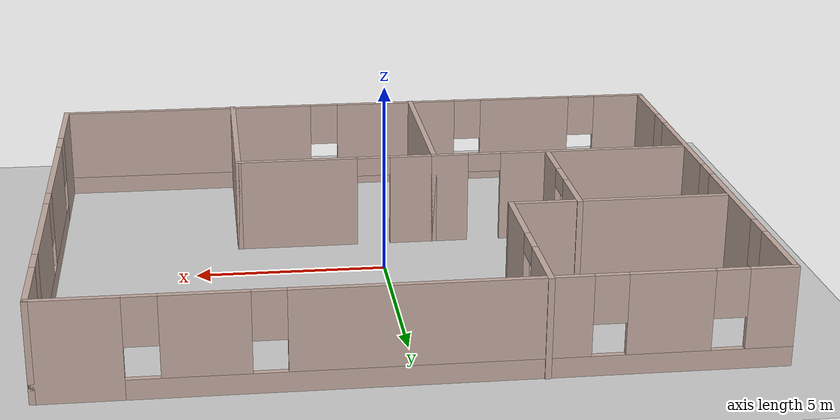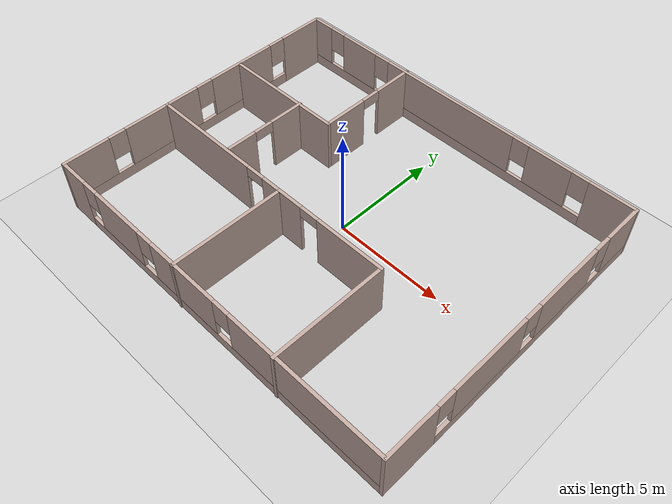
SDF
<?xml version="1.0" ?>
<sdf version="1.6">
  <world name="default">
    <include>
      <uri>model://sun</uri>
    </include>
    <include>
      <uri>model://ground_plane</uri>
    </include>

    <include>
        <uri>model://my_home_layout</uri>
        <pose>0 0 0 0 0 0</pose>
    </include>
  </world>
</sdf>

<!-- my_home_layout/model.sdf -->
<sdf version='1.7'>
  <model name='my_home_layout'>
    <pose>0.270044 -1.10157 0 0 -0 0</pose>
    <link name='Wall_10'>
      <pose>-0 -6.92353 0 0 -0 0</pose>
      <visual name='Wall_10_Visual_0'>
        <pose>-7.99396 0 1.25 0 -0 0</pose>
        <geometry>
          <box>
            <size>1.51208 0.15 2.5</size>
          </box>
        </geometry>
        <material>
          <script>
            <uri>file://media/materials/scripts/gazebo.material</uri>
            <name>Gazebo/Grey</name>
          </script>
          <ambient>0.760784 0.662745 0.627451 1</ambient>
        </material>
        <meta>
          <layer>0</layer>
        </meta>
      </visual>
      <collision name='Wall_10_Collision_0'>
        <geometry>
          <box>
            <size>1.51208 0.15 2.5</size>
          </box>
        </geometry>
        <pose>-7.99396 0 1.25 0 -0 0</pose>
      </collision>
      <visual name='Wall_10_Visual_1'>
        <pose>0.756038 0 0.25 0 -0 0</pose>
        <geometry>
          <box>
            <size>15.9879 0.15 0.5</size>
          </box>
        </geometry>
        <material>
          <script>
            <uri>file://media/materials/scripts/gazebo.material</uri>
            <name>Gazebo/Grey</name>
          </script>
          <ambient>0.760784 0.662745 0.627451 1</ambient>
        </material>
        <meta>
          <layer>0</layer>
        </meta>
      </visual>
      <collision name='Wall_10_Collision_1'>
        <geometry>
          <box>
            <size>15.9879 0.15 0.5</size>
          </box>
        </geometry>
        <pose>0.756038 0 0.25 0 -0 0</pose>
      </collision>
      <visual name='Wall_10_Visual_2'>
        <pose>-5.07899 0 1.5 0 -0 0</pose>
        <geometry>
          <box>
            <size>2.71788 0.15 2</size>
          </box>
        </geometry>
        <material>
          <script>
            <uri>file://media/materials/scripts/gazebo.material</uri>
            <name>Gazebo/Grey</name>
          </script>
          <ambient>0.760784 0.662745 0.627451 1</ambient>
        </material>
        <meta>
          <layer>0</layer>
        </meta>
      </visual>
      <collision name='Wall_10_Collision_2'>
        <geometry>
          <box>
            <size>2.71788 0.15 2</size>
          </box>
        </geometry>
        <pose>-5.07899 0 1.5 0 -0 0</pose>
      </collision>
      <visual name='Wall_10_Visual_3'>
        <pose>-1.13311 0 1.5 0 -0 0</pose>
        <geometry>
          <box>
            <size>3.57388 0.15 2</size>
          </box>
        </geometry>
        <material>
          <script>
            <uri>file://media/materials/scripts/gazebo.material</uri>
            <name>Gazebo/Grey</name>
          </script>
          <ambient>0.760784 0.662745 0.627451 1</ambient>
        </material>
        <meta>
          <layer>0</layer>
        </meta>
      </visual>
      <collision name='Wall_10_Collision_3'>
        <geometry>
          <box>
            <size>3.57388 0.15 2</size>
          </box>
        </geometry>
        <pose>-1.13311 0 1.5 0 -0 0</pose>
      </collision>
      <visual name='Wall_10_Visual_4'>
        <pose>5.10192 0 1.5 0 -0 0</pose>
        <geometry>
          <box>
            <size>7.29617 0.15 2</size>
          </box>
        </geometry>
        <material>
          <script>
            <uri>file://media/materials/scripts/gazebo.material</uri>
            <name>Gazebo/Grey</name>
          </script>
          <ambient>0.760784 0.662745 0.627451 1</ambient>
        </material>
        <meta>
          <layer>0</layer>
        </meta>
      </visual>
      <collision name='Wall_10_Collision_4'>
        <geometry>
          <box>
            <size>7.29617 0.15 2</size>
          </box>
        </geometry>
        <pose>5.10192 0 1.5 0 -0 0</pose>
      </collision>
      <visual name='Wall_10_Visual_5'>
        <pose>-6.83792 0 1.9 0 -0 0</pose>
        <geometry>
          <box>
            <size>0.8 0.15 1.2</size>
          </box>
        </geometry>
        <material>
          <script>
            <uri>file://media/materials/scripts/gazebo.material</uri>
            <name>Gazebo/Grey</name>
          </script>
          <ambient>0.760784 0.662745 0.627451 1</ambient>
        </material>
        <meta>
          <layer>0</layer>
        </meta>
      </visual>
      <collision name='Wall_10_Collision_5'>
        <geometry>
          <box>
            <size>0.8 0.15 1.2</size>
          </box>
        </geometry>
        <pose>-6.83792 0 1.9 0 -0 0</pose>
      </collision>
      <visual name='Wall_10_Visual_6'>
        <pose>-3.32005 0 1.9 0 -0 0</pose>
        <geometry>
          <box>
            <size>0.8 0.15 1.2</size>
          </box>
        </geometry>
        <material>
          <script>
            <uri>file://media/materials/scripts/gazebo.material</uri>
            <name>Gazebo/Grey</name>
          </script>
          <ambient>0.760784 0.662745 0.627451 1</ambient>
        </material>
        <meta>
          <layer>0</layer>
        </meta>
      </visual>
      <collision name='Wall_10_Collision_6'>
        <geometry>
          <box>
            <size>0.8 0.15 1.2</size>
          </box>
        </geometry>
        <pose>-3.32005 0 1.9 0 -0 0</pose>
      </collision>
      <visual name='Wall_10_Visual_7'>
        <pose>1.05383 0 1.9 0 -0 0</pose>
        <geometry>
          <box>
            <size>0.8 0.15 1.2</size>
          </box>
        </geometry>
        <material>
          <script>
            <uri>file://media/materials/scripts/gazebo.material</uri>
            <name>Gazebo/Grey</name>
          </script>
          <ambient>0.760784 0.662745 0.627451 1</ambient>
        </material>
        <meta>
          <layer>0</layer>
        </meta>
      </visual>
      <collision name='Wall_10_Collision_7'>
        <geometry>
          <box>
            <size>0.8 0.15 1.2</size>
          </box>
        </geometry>
        <pose>1.05383 0 1.9 0 -0 0</pose>
      </collision>
    </link>
    <link name='Wall_11'>
      <pose>8.675 0.001469 0 0 -0 1.5708</pose>
      <visual name='Wall_11_Visual_0'>
        <pose>-5.76322 0 1.25 0 -0 0</pose>
        <geometry>
          <box>
            <size>2.47357 0.15 2.5</size>
          </box>
        </geometry>
        <material>
          <script>
            <uri>file://media/materials/scripts/gazebo.material</uri>
            <name>Gazebo/Grey</name>
          </script>
          <ambient>0.760784 0.662745 0.627451 1</ambient>
        </material>
        <meta>
          <layer>0</layer>
        </meta>
      </visual>
      <collision name='Wall_11_Collision_0'>
        <geometry>
          <box>
            <size>2.47357 0.15 2.5</size>
          </box>
        </geometry>
        <pose>-5.76322 0 1.25 0 -0 0</pose>
      </collision>
      <visual name='Wall_11_Visual_1'>
        <pose>1.23678 0 0.25 0 -0 0</pose>
        <geometry>
          <box>
            <size>11.5264 0.15 0.5</size>
          </box>
        </geometry>
        <material>
          <script>
            <uri>file://media/materials/scripts/gazebo.material</uri>
            <name>Gazebo/Grey</name>
          </script>
          <ambient>0.760784 0.662745 0.627451 1</ambient>
        </material>
        <meta>
          <layer>0</layer>
        </meta>
      </visual>
      <collision name='Wall_11_Collision_1'>
        <geometry>
          <box>
            <size>11.5264 0.15 0.5</size>
          </box>
        </geometry>
        <pose>1.23678 0 0.25 0 -0 0</pose>
      </collision>
      <visual name='Wall_11_Visual_2'>
        <pose>-1.84746 0 1.5 0 -0 0</pose>
        <geometry>
          <box>
            <size>3.75794 0.15 2</size>
          </box>
        </geometry>
        <material>
          <script>
            <uri>file://media/materials/scripts/gazebo.material</uri>
            <name>Gazebo/Grey</name>
          </script>
          <ambient>0.760784 0.662745 0.627451 1</ambient>
        </material>
        <meta>
          <layer>0</layer>
        </meta>
      </visual>
      <collision name='Wall_11_Collision_2'>
        <geometry>
          <box>
            <size>3.75794 0.15 2</size>
          </box>
        </geometry>
        <pose>-1.84746 0 1.5 0 -0 0</pose>
      </collision>
      <visual name='Wall_11_Visual_3'>
        <pose>2.52694 0 1.5 0 -0 0</pose>
        <geometry>
          <box>
            <size>3.39086 0.15 2</size>
          </box>
        </geometry>
        <material>
          <script>
            <uri>file://media/materials/scripts/gazebo.material</uri>
            <name>Gazebo/Grey</name>
          </script>
          <ambient>0.760784 0.662745 0.627451 1</ambient>
        </material>
        <meta>
          <layer>0</layer>
        </meta>
      </visual>
      <collision name='Wall_11_Collision_3'>
        <geometry>
          <box>
            <size>3.39086 0.15 2</size>
          </box>
        </geometry>
        <pose>2.52694 0 1.5 0 -0 0</pose>
      </collision>
      <visual name='Wall_11_Visual_4'>
        <pose>6.01119 0 1.5 0 -0 0</pose>
        <geometry>
          <box>
            <size>1.97763 0.15 2</size>
          </box>
        </geometry>
        <material>
          <script>
            <uri>file://media/materials/scripts/gazebo.material</uri>
            <name>Gazebo/Grey</name>
          </script>
          <ambient>0.760784 0.662745 0.627451 1</ambient>
        </material>
        <meta>
          <layer>0</layer>
        </meta>
      </visual>
      <collision name='Wall_11_Collision_4'>
        <geometry>
          <box>
            <size>1.97763 0.15 2</size>
          </box>
        </geometry>
        <pose>6.01119 0 1.5 0 -0 0</pose>
      </collision>
      <visual name='Wall_11_Visual_5'>
        <pose>-4.12643 0 1.9 0 -0 0</pose>
        <geometry>
          <box>
            <size>0.8 0.15 1.2</size>
          </box>
        </geometry>
        <material>
          <script>
            <uri>file://media/materials/scripts/gazebo.material</uri>
            <name>Gazebo/Grey</name>
          </script>
          <ambient>0.760784 0.662745 0.627451 1</ambient>
        </material>
        <meta>
          <layer>0</layer>
        </meta>
      </visual>
      <collision name='Wall_11_Collision_5'>
        <geometry>
          <box>
            <size>0.8 0.15 1.2</size>
          </box>
        </geometry>
        <pose>-4.12643 0 1.9 0 -0 0</pose>
      </collision>
      <visual name='Wall_11_Visual_6'>
        <pose>0.43151 0 1.9 0 -0 0</pose>
        <geometry>
          <box>
            <size>0.8 0.15 1.2</size>
          </box>
        </geometry>
        <material>
          <script>
            <uri>file://media/materials/scripts/gazebo.material</uri>
            <name>Gazebo/Grey</name>
          </script>
          <ambient>0.760784 0.662745 0.627451 1</ambient>
        </material>
        <meta>
          <layer>0</layer>
        </meta>
      </visual>
      <collision name='Wall_11_Collision_6'>
        <geometry>
          <box>
            <size>0.8 0.15 1.2</size>
          </box>
        </geometry>
        <pose>0.43151 0 1.9 0 -0 0</pose>
      </collision>
      <visual name='Wall_11_Visual_7'>
        <pose>4.62237 0 1.9 0 -0 0</pose>
        <geometry>
          <box>
            <size>0.8 0.15 1.2</size>
          </box>
        </geometry>
        <material>
          <script>
            <uri>file://media/materials/scripts/gazebo.material</uri>
            <name>Gazebo/Grey</name>
          </script>
          <ambient>0.760784 0.662745 0.627451 1</ambient>
        </material>
        <meta>
          <layer>0</layer>
        </meta>
      </visual>
      <collision name='Wall_11_Collision_7'>
        <geometry>
          <box>
            <size>0.8 0.15 1.2</size>
          </box>
        </geometry>
        <pose>4.62237 0 1.9 0 -0 0</pose>
      </collision>
    </link>
    <link name='Wall_12'>
      <pose>-0 6.92647 0 0 -0 3.14159</pose>
      <visual name='Wall_12_Visual_0'>
        <pose>-7.6817 0 1.25 0 -0 0</pose>
        <geometry>
          <box>
            <size>2.1366 0.15 2.5</size>
          </box>
        </geometry>
        <material>
          <script>
            <uri>file://media/materials/scripts/gazebo.material</uri>
            <name>Gazebo/Grey</name>
          </script>
          <ambient>0.760784 0.662745 0.627451 1</ambient>
        </material>
        <meta>
          <layer>0</layer>
        </meta>
      </visual>
      <collision name='Wall_12_Collision_0'>
        <geometry>
          <box>
            <size>2.1366 0.15 2.5</size>
          </box>
        </geometry>
        <pose>-7.6817 0 1.25 0 -0 0</pose>
      </collision>
      <visual name='Wall_12_Visual_1'>
        <pose>1.0683 0 0.25 0 -0 0</pose>
        <geometry>
          <box>
            <size>15.3634 0.15 0.5</size>
          </box>
        </geometry>
        <material>
          <script>
            <uri>file://media/materials/scripts/gazebo.material</uri>
            <name>Gazebo/Grey</name>
          </script>
          <ambient>0.760784 0.662745 0.627451 1</ambient>
        </material>
        <meta>
          <layer>0</layer>
        </meta>
      </visual>
      <collision name='Wall_12_Collision_1'>
        <geometry>
          <box>
            <size>15.3634 0.15 0.5</size>
          </box>
        </geometry>
        <pose>1.0683 0 0.25 0 -0 0</pose>
      </collision>
      <visual name='Wall_12_Visual_2'>
        <pose>-4.78866 0 1.5 0 -0 0</pose>
        <geometry>
          <box>
            <size>2.04948 0.15 2</size>
          </box>
        </geometry>
        <material>
          <script>
            <uri>file://media/materials/scripts/gazebo.material</uri>
            <name>Gazebo/Grey</name>
          </script>
          <ambient>0.760784 0.662745 0.627451 1</ambient>
        </material>
        <meta>
          <layer>0</layer>
        </meta>
      </visual>
      <collision name='Wall_12_Collision_2'>
        <geometry>
          <box>
            <size>2.04948 0.15 2</size>
          </box>
        </geometry>
        <pose>-4.78866 0 1.5 0 -0 0</pose>
      </collision>
      <visual name='Wall_12_Visual_3'>
        <pose>0.505746 0 1.5 0 -0 0</pose>
        <geometry>
          <box>
            <size>6.93933 0.15 2</size>
          </box>
        </geometry>
        <material>
          <script>
            <uri>file://media/materials/scripts/gazebo.material</uri>
            <name>Gazebo/Grey</name>
          </script>
          <ambient>0.760784 0.662745 0.627451 1</ambient>
        </material>
        <meta>
          <layer>0</layer>
        </meta>
      </visual>
      <collision name='Wall_12_Collision_3'>
        <geometry>
          <box>
            <size>6.93933 0.15 2</size>
          </box>
        </geometry>
        <pose>0.505746 0 1.5 0 -0 0</pose>
      </collision>
      <visual name='Wall_12_Visual_4'>
        <pose>5.78256 0 1.5 0 -0 0</pose>
        <geometry>
          <box>
            <size>2.0143 0.15 2</size>
          </box>
        </geometry>
        <material>
          <script>
            <uri>file://media/materials/scripts/gazebo.material</uri>
            <name>Gazebo/Grey</name>
          </script>
          <ambient>0.760784 0.662745 0.627451 1</ambient>
        </material>
        <meta>
          <layer>0</layer>
        </meta>
      </visual>
      <collision name='Wall_12_Collision_4'>
        <geometry>
          <box>
            <size>2.0143 0.15 2</size>
          </box>
        </geometry>
        <pose>5.78256 0 1.5 0 -0 0</pose>
      </collision>
      <visual name='Wall_12_Visual_5'>
        <pose>8.16986 0 1.5 0 -0 0</pose>
        <geometry>
          <box>
            <size>1.16029 0.15 2</size>
          </box>
        </geometry>
        <material>
          <script>
            <uri>file://media/materials/scripts/gazebo.material</uri>
            <name>Gazebo/Grey</name>
          </script>
          <ambient>0.760784 0.662745 0.627451 1</ambient>
        </material>
        <meta>
          <layer>0</layer>
        </meta>
      </visual>
      <collision name='Wall_12_Collision_5'>
        <geometry>
          <box>
            <size>1.16029 0.15 2</size>
          </box>
        </geometry>
        <pose>8.16986 0 1.5 0 -0 0</pose>
      </collision>
      <visual name='Wall_12_Visual_6'>
        <pose>-6.2134 0 1.9 0 -0 0</pose>
        <geometry>
          <box>
            <size>0.8 0.15 1.2</size>
          </box>
        </geometry>
        <material>
          <script>
            <uri>file://media/materials/scripts/gazebo.material</uri>
            <name>Gazebo/Grey</name>
          </script>
          <ambient>0.760784 0.662745 0.627451 1</ambient>
        </material>
        <meta>
          <layer>0</layer>
        </meta>
      </visual>
      <collision name='Wall_12_Collision_6'>
        <geometry>
          <box>
            <size>0.8 0.15 1.2</size>
          </box>
        </geometry>
        <pose>-6.2134 0 1.9 0 -0 0</pose>
      </collision>
      <visual name='Wall_12_Visual_7'>
        <pose>-3.36392 0 1.9 0 -0 0</pose>
        <geometry>
          <box>
            <size>0.8 0.15 1.2</size>
          </box>
        </geometry>
        <material>
          <script>
            <uri>file://media/materials/scripts/gazebo.material</uri>
            <name>Gazebo/Grey</name>
          </script>
          <ambient>0.760784 0.662745 0.627451 1</ambient>
        </material>
        <meta>
          <layer>0</layer>
        </meta>
      </visual>
      <collision name='Wall_12_Collision_7'>
        <geometry>
          <box>
            <size>0.8 0.15 1.2</size>
          </box>
        </geometry>
        <pose>-3.36392 0 1.9 0 -0 0</pose>
      </collision>
      <visual name='Wall_12_Visual_8'>
        <pose>4.37541 0 1.9 0 -0 0</pose>
        <geometry>
          <box>
            <size>0.8 0.15 1.2</size>
          </box>
        </geometry>
        <material>
          <script>
            <uri>file://media/materials/scripts/gazebo.material</uri>
            <name>Gazebo/Grey</name>
          </script>
          <ambient>0.760784 0.662745 0.627451 1</ambient>
        </material>
        <meta>
          <layer>0</layer>
        </meta>
      </visual>
      <collision name='Wall_12_Collision_8'>
        <geometry>
          <box>
            <size>0.8 0.15 1.2</size>
          </box>
        </geometry>
        <pose>4.37541 0 1.9 0 -0 0</pose>
      </collision>
      <visual name='Wall_12_Visual_9'>
        <pose>7.18971 0 1.9 0 -0 0</pose>
        <geometry>
          <box>
            <size>0.8 0.15 1.2</size>
          </box>
        </geometry>
        <material>
          <script>
            <uri>file://media/materials/scripts/gazebo.material</uri>
            <name>Gazebo/Grey</name>
          </script>
          <ambient>0.760784 0.662745 0.627451 1</ambient>
        </material>
        <meta>
          <layer>0</layer>
        </meta>
      </visual>
      <collision name='Wall_12_Collision_9'>
        <geometry>
          <box>
            <size>0.8 0.15 1.2</size>
          </box>
        </geometry>
        <pose>7.18971 0 1.9 0 -0 0</pose>
      </collision>
    </link>
    <link name='Wall_14'>
      <pose>-8.675 0.001469 0 0 -0 -1.5708</pose>
      <visual name='Wall_14_Visual_0'>
        <pose>-5.86508 0 1.25 0 -0 0</pose>
        <geometry>
          <box>
            <size>2.26984 0.15 2.5</size>
          </box>
        </geometry>
        <material>
          <script>
            <uri>file://media/materials/scripts/gazebo.material</uri>
            <name>Gazebo/Grey</name>
          </script>
          <ambient>0.760784 0.662745 0.627451 1</ambient>
        </material>
        <meta>
          <layer>0</layer>
        </meta>
      </visual>
      <collision name='Wall_14_Collision_0'>
        <geometry>
          <box>
            <size>2.26984 0.15 2.5</size>
          </box>
        </geometry>
        <pose>-5.86508 0 1.25 0 -0 0</pose>
      </collision>
      <visual name='Wall_14_Visual_1'>
        <pose>1.13492 0 0.25 0 -0 0</pose>
        <geometry>
          <box>
            <size>11.7302 0.15 0.5</size>
          </box>
        </geometry>
        <material>
          <script>
            <uri>file://media/materials/scripts/gazebo.material</uri>
            <name>Gazebo/Grey</name>
          </script>
          <ambient>0.760784 0.662745 0.627451 1</ambient>
        </material>
        <meta>
          <layer>0</layer>
        </meta>
      </visual>
      <collision name='Wall_14_Collision_1'>
        <geometry>
          <box>
            <size>11.7302 0.15 0.5</size>
          </box>
        </geometry>
        <pose>1.13492 0 0.25 0 -0 0</pose>
      </collision>
      <visual name='Wall_14_Visual_2'>
        <pose>-2.21944 0 1.5 0 -0 0</pose>
        <geometry>
          <box>
            <size>3.42145 0.15 2</size>
          </box>
        </geometry>
        <material>
          <script>
            <uri>file://media/materials/scripts/gazebo.material</uri>
            <name>Gazebo/Grey</name>
          </script>
          <ambient>0.760784 0.662745 0.627451 1</ambient>
        </material>
        <meta>
          <layer>0</layer>
        </meta>
      </visual>
      <collision name='Wall_14_Collision_2'>
        <geometry>
          <box>
            <size>3.42145 0.15 2</size>
          </box>
        </geometry>
        <pose>-2.21944 0 1.5 0 -0 0</pose>
      </collision>
      <visual name='Wall_14_Visual_3'>
        <pose>2.16181 0 1.5 0 -0 0</pose>
        <geometry>
          <box>
            <size>3.74105 0.15 2</size>
          </box>
        </geometry>
        <material>
          <script>
            <uri>file://media/materials/scripts/gazebo.material</uri>
            <name>Gazebo/Grey</name>
          </script>
          <ambient>0.760784 0.662745 0.627451 1</ambient>
        </material>
        <meta>
          <layer>0</layer>
        </meta>
      </visual>
      <collision name='Wall_14_Collision_3'>
        <geometry>
          <box>
            <size>3.74105 0.15 2</size>
          </box>
        </geometry>
        <pose>2.16181 0 1.5 0 -0 0</pose>
      </collision>
      <visual name='Wall_14_Visual_4'>
        <pose>5.91617 0 1.5 0 -0 0</pose>
        <geometry>
          <box>
            <size>2.16766 0.15 2</size>
          </box>
        </geometry>
        <material>
          <script>
            <uri>file://media/materials/scripts/gazebo.material</uri>
            <name>Gazebo/Grey</name>
          </script>
          <ambient>0.760784 0.662745 0.627451 1</ambient>
        </material>
        <meta>
          <layer>0</layer>
        </meta>
      </visual>
      <collision name='Wall_14_Collision_4'>
        <geometry>
          <box>
            <size>2.16766 0.15 2</size>
          </box>
        </geometry>
        <pose>5.91617 0 1.5 0 -0 0</pose>
      </collision>
      <visual name='Wall_14_Visual_5'>
        <pose>-4.33016 0 1.9 0 -0 0</pose>
        <geometry>
          <box>
            <size>0.8 0.15 1.2</size>
          </box>
        </geometry>
        <material>
          <script>
            <uri>file://media/materials/scripts/gazebo.material</uri>
            <name>Gazebo/Grey</name>
          </script>
          <ambient>0.760784 0.662745 0.627451 1</ambient>
        </material>
        <meta>
          <layer>0</layer>
        </meta>
      </visual>
      <collision name='Wall_14_Collision_5'>
        <geometry>
          <box>
            <size>0.8 0.15 1.2</size>
          </box>
        </geometry>
        <pose>-4.33016 0 1.9 0 -0 0</pose>
      </collision>
      <visual name='Wall_14_Visual_6'>
        <pose>-0.108711 0 1.9 0 -0 0</pose>
        <geometry>
          <box>
            <size>0.8 0.15 1.2</size>
          </box>
        </geometry>
        <material>
          <script>
            <uri>file://media/materials/scripts/gazebo.material</uri>
            <name>Gazebo/Grey</name>
          </script>
          <ambient>0.760784 0.662745 0.627451 1</ambient>
        </material>
        <meta>
          <layer>0</layer>
        </meta>
      </visual>
      <collision name='Wall_14_Collision_6'>
        <geometry>
          <box>
            <size>0.8 0.15 1.2</size>
          </box>
        </geometry>
        <pose>-0.108711 0 1.9 0 -0 0</pose>
      </collision>
      <visual name='Wall_14_Visual_7'>
        <pose>4.43234 0 1.9 0 -0 0</pose>
        <geometry>
          <box>
            <size>0.8 0.15 1.2</size>
          </box>
        </geometry>
        <material>
          <script>
            <uri>file://media/materials/scripts/gazebo.material</uri>
            <name>Gazebo/Grey</name>
          </script>
          <ambient>0.760784 0.662745 0.627451 1</ambient>
        </material>
        <meta>
          <layer>0</layer>
        </meta>
      </visual>
      <collision name='Wall_14_Collision_7'>
        <geometry>
          <box>
            <size>0.8 0.15 1.2</size>
          </box>
        </geometry>
        <pose>4.43234 0 1.9 0 -0 0</pose>
      </collision>
    </link>
    <link name='Wall_16'>
      <pose>-2.97076 4.53466 0 0 -0 -1.5708</pose>
      <visual name='Wall_16_Visual_0'>
        <pose>-1.53179 0 1.25 0 -0 0</pose>
        <geometry>
          <box>
            <size>1.93642 0.15 2.5</size>
          </box>
        </geometry>
        <material>
          <script>
            <uri>file://media/materials/scripts/gazebo.material</uri>
            <name>Gazebo/Grey</name>
          </script>
          <ambient>0.760784 0.662745 0.627451 1</ambient>
        </material>
        <meta>
          <layer>0</layer>
        </meta>
      </visual>
      <collision name='Wall_16_Collision_0'>
        <geometry>
          <box>
            <size>1.93642 0.15 2.5</size>
          </box>
        </geometry>
        <pose>-1.53179 0 1.25 0 -0 0</pose>
      </collision>
      <visual name='Wall_16_Visual_1'>
        <pose>1.41821 0 1.25 0 -0 0</pose>
        <geometry>
          <box>
            <size>2.16358 0.15 2.5</size>
          </box>
        </geometry>
        <material>
          <script>
            <uri>file://media/materials/scripts/gazebo.material</uri>
            <name>Gazebo/Grey</name>
          </script>
          <ambient>0.760784 0.662745 0.627451 1</ambient>
        </material>
        <meta>
          <layer>0</layer>
        </meta>
      </visual>
      <collision name='Wall_16_Collision_1'>
        <geometry>
          <box>
            <size>2.16358 0.15 2.5</size>
          </box>
        </geometry>
        <pose>1.41821 0 1.25 0 -0 0</pose>
      </collision>
      <visual name='Wall_16_Visual_2'>
        <pose>-0.113583 0 2.25 0 -0 0</pose>
        <geometry>
          <box>
            <size>0.9 0.15 0.5</size>
          </box>
        </geometry>
        <material>
          <script>
            <uri>file://media/materials/scripts/gazebo.material</uri>
            <name>Gazebo/Grey</name>
          </script>
          <ambient>0.760784 0.662745 0.627451 1</ambient>
        </material>
        <meta>
          <layer>0</layer>
        </meta>
      </visual>
      <collision name='Wall_16_Collision_2'>
        <geometry>
          <box>
            <size>0.9 0.15 0.5</size>
          </box>
        </geometry>
        <pose>-0.113583 0 2.25 0 -0 0</pose>
      </collision>
    </link>
    <link name='Wall_17'>
      <collision name='Wall_17_Collision'>
        <geometry>
          <box>
            <size>5.75 0.15 2.5</size>
          </box>
        </geometry>
        <pose>0 0 1.25 0 -0 0</pose>
      </collision>
      <visual name='Wall_17_Visual'>
        <pose>0 0 1.25 0 -0 0</pose>
        <geometry>
          <box>
            <size>5.75 0.15 2.5</size>
          </box>
        </geometry>
        <material>
          <script>
            <uri>file://media/materials/scripts/gazebo.material</uri>
            <name>Gazebo/Grey</name>
          </script>
          <ambient>0.760784 0.662745 0.627451 1</ambient>
        </material>
        <meta>
          <layer>0</layer>
        </meta>
      </visual>
      <pose>-5.77076 2.10966 0 0 -0 3.14159</pose>
    </link>
    <link name='Wall_19'>
      <pose>-5.125 -1.85966 0 0 -0 0</pose>
      <visual name='Wall_19_Visual_0'>
        <pose>-0.95913 0 1.25 0 -0 0</pose>
        <geometry>
          <box>
            <size>5.33174 0.15 2.5</size>
          </box>
        </geometry>
        <material>
          <script>
            <uri>file://media/materials/scripts/gazebo.material</uri>
            <name>Gazebo/Grey</name>
          </script>
          <ambient>0.760784 0.662745 0.627451 1</ambient>
        </material>
        <meta>
          <layer>0</layer>
        </meta>
      </visual>
      <collision name='Wall_19_Collision_0'>
        <geometry>
          <box>
            <size>5.33174 0.15 2.5</size>
          </box>
        </geometry>
        <pose>-0.95913 0 1.25 0 -0 0</pose>
      </collision>
      <visual name='Wall_19_Visual_1'>
        <pose>3.11587 0 1.25 0 -0 0</pose>
        <geometry>
          <box>
            <size>1.01826 0.15 2.5</size>
          </box>
        </geometry>
        <material>
          <script>
            <uri>file://media/materials/scripts/gazebo.material</uri>
            <name>Gazebo/Grey</name>
          </script>
          <ambient>0.760784 0.662745 0.627451 1</ambient>
        </material>
        <meta>
          <layer>0</layer>
        </meta>
      </visual>
      <collision name='Wall_19_Collision_1'>
        <geometry>
          <box>
            <size>1.01826 0.15 2.5</size>
          </box>
        </geometry>
        <pose>3.11587 0 1.25 0 -0 0</pose>
      </collision>
      <visual name='Wall_19_Visual_2'>
        <pose>2.15674 0 2.25 0 -0 0</pose>
        <geometry>
          <box>
            <size>0.9 0.15 0.5</size>
          </box>
        </geometry>
        <material>
          <script>
            <uri>file://media/materials/scripts/gazebo.material</uri>
            <name>Gazebo/Grey</name>
          </script>
          <ambient>0.760784 0.662745 0.627451 1</ambient>
        </material>
        <meta>
          <layer>0</layer>
        </meta>
      </visual>
      <collision name='Wall_19_Collision_2'>
        <geometry>
          <box>
            <size>0.9 0.15 0.5</size>
          </box>
        </geometry>
        <pose>2.15674 0 2.25 0 -0 0</pose>
      </collision>
    </link>
    <link name='Wall_22'>
      <collision name='Wall_22_Collision'>
        <geometry>
          <box>
            <size>5.25 0.15 2.5</size>
          </box>
        </geometry>
        <pose>0 0 1.25 0 -0 0</pose>
      </collision>
      <visual name='Wall_22_Visual'>
        <pose>0 0 1.25 0 -0 0</pose>
        <geometry>
          <box>
            <size>5.25 0.15 2.5</size>
          </box>
        </geometry>
        <material>
          <script>
            <uri>file://media/materials/scripts/gazebo.material</uri>
            <name>Gazebo/Grey</name>
          </script>
          <ambient>0.760784 0.662745 0.627451 1</ambient>
        </material>
        <meta>
          <layer>0</layer>
        </meta>
      </visual>
      <pose>-1.575 -4.40966 0 0 -0 -1.5708</pose>
    </link>
    <link name='Wall_24'>
      <pose>1.1 -1.85966 0 0 -0 0</pose>
      <visual name='Wall_24_Visual_0'>
        <pose>-2.10385 0 1.25 0 -0 0</pose>
        <geometry>
          <box>
            <size>1.29229 0.15 2.5</size>
          </box>
        </geometry>
        <material>
          <script>
            <uri>file://media/materials/scripts/gazebo.material</uri>
            <name>Gazebo/Grey</name>
          </script>
          <ambient>0.760784 0.662745 0.627451 1</ambient>
        </material>
        <meta>
          <layer>0</layer>
        </meta>
      </visual>
      <collision name='Wall_24_Collision_0'>
        <geometry>
          <box>
            <size>1.29229 0.15 2.5</size>
          </box>
        </geometry>
        <pose>-2.10385 0 1.25 0 -0 0</pose>
      </collision>
      <visual name='Wall_24_Visual_1'>
        <pose>1.09615 0 1.25 0 -0 0</pose>
        <geometry>
          <box>
            <size>3.30771 0.15 2.5</size>
          </box>
        </geometry>
        <material>
          <script>
            <uri>file://media/materials/scripts/gazebo.material</uri>
            <name>Gazebo/Grey</name>
          </script>
          <ambient>0.760784 0.662745 0.627451 1</ambient>
        </material>
        <meta>
          <layer>0</layer>
        </meta>
      </visual>
      <collision name='Wall_24_Collision_1'>
        <geometry>
          <box>
            <size>3.30771 0.15 2.5</size>
          </box>
        </geometry>
        <pose>1.09615 0 1.25 0 -0 0</pose>
      </collision>
      <visual name='Wall_24_Visual_2'>
        <pose>-1.00771 0 2.25 0 -0 0</pose>
        <geometry>
          <box>
            <size>0.9 0.15 0.5</size>
          </box>
        </geometry>
        <material>
          <script>
            <uri>file://media/materials/scripts/gazebo.material</uri>
            <name>Gazebo/Grey</name>
          </script>
          <ambient>0.760784 0.662745 0.627451 1</ambient>
        </material>
        <meta>
          <layer>0</layer>
        </meta>
      </visual>
      <collision name='Wall_24_Collision_2'>
        <geometry>
          <box>
            <size>0.9 0.15 0.5</size>
          </box>
        </geometry>
        <pose>-1.00771 0 2.25 0 -0 0</pose>
      </collision>
    </link>
    <link name='Wall_25'>
      <collision name='Wall_25_Collision'>
        <geometry>
          <box>
            <size>5.25 0.15 2.5</size>
          </box>
        </geometry>
        <pose>0 0 1.25 0 -0 0</pose>
      </collision>
      <visual name='Wall_25_Visual'>
        <pose>0 0 1.25 0 -0 0</pose>
        <geometry>
          <box>
            <size>5.25 0.15 2.5</size>
          </box>
        </geometry>
        <material>
          <script>
            <uri>file://media/materials/scripts/gazebo.material</uri>
            <name>Gazebo/Grey</name>
          </script>
          <ambient>0.760784 0.662745 0.627451 1</ambient>
        </material>
        <meta>
          <layer>0</layer>
        </meta>
      </visual>
      <pose>3.775 -4.40966 0 0 -0 -1.5708</pose>
    </link>
    <link name='Wall_27'>
      <pose>-4.7272 0.225548 0 0 -0 -1.5708</pose>
      <visual name='Wall_27_Visual_0'>
        <pose>-1.14973 0 1.25 0 -0 0</pose>
        <geometry>
          <box>
            <size>1.70055 0.15 2.5</size>
          </box>
        </geometry>
        <material>
          <script>
            <uri>file://media/materials/scripts/gazebo.material</uri>
            <name>Gazebo/Grey</name>
          </script>
          <ambient>0.760784 0.662745 0.627451 1</ambient>
        </material>
        <meta>
          <layer>0</layer>
        </meta>
      </visual>
      <collision name='Wall_27_Collision_0'>
        <geometry>
          <box>
            <size>1.70055 0.15 2.5</size>
          </box>
        </geometry>
        <pose>-1.14973 0 1.25 0 -0 0</pose>
      </collision>
      <visual name='Wall_27_Visual_1'>
        <pose>1.30027 0 1.25 0 -0 0</pose>
        <geometry>
          <box>
            <size>1.39945 0.15 2.5</size>
          </box>
        </geometry>
        <material>
          <script>
            <uri>file://media/materials/scripts/gazebo.material</uri>
            <name>Gazebo/Grey</name>
          </script>
          <ambient>0.760784 0.662745 0.627451 1</ambient>
        </material>
        <meta>
          <layer>0</layer>
        </meta>
      </visual>
      <collision name='Wall_27_Collision_1'>
        <geometry>
          <box>
            <size>1.39945 0.15 2.5</size>
          </box>
        </geometry>
        <pose>1.30027 0 1.25 0 -0 0</pose>
      </collision>
      <visual name='Wall_27_Visual_2'>
        <pose>0.150547 0 2.25 0 -0 0</pose>
        <geometry>
          <box>
            <size>0.9 0.15 0.5</size>
          </box>
        </geometry>
        <material>
          <script>
            <uri>file://media/materials/scripts/gazebo.material</uri>
            <name>Gazebo/Grey</name>
          </script>
          <ambient>0.760784 0.662745 0.627451 1</ambient>
        </material>
        <meta>
          <layer>0</layer>
        </meta>
      </visual>
      <collision name='Wall_27_Collision_2'>
        <geometry>
          <box>
            <size>0.9 0.15 0.5</size>
          </box>
        </geometry>
        <pose>0.150547 0 2.25 0 -0 0</pose>
      </collision>
    </link>
    <static>1</static>
  </model>
</sdf>
